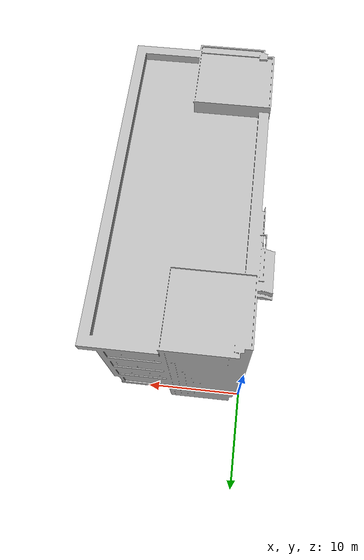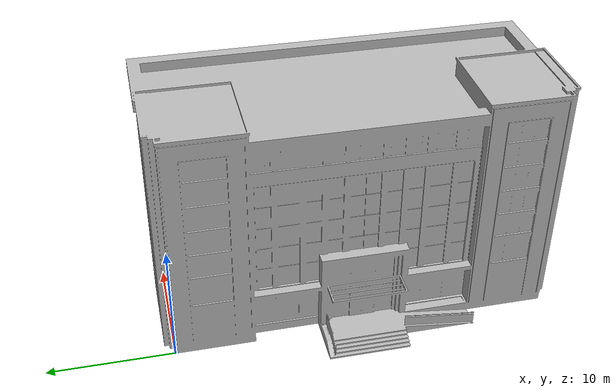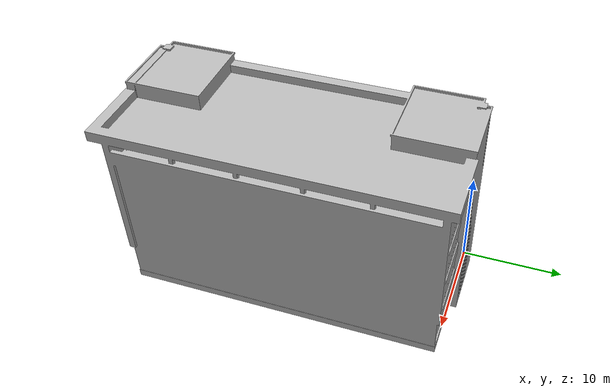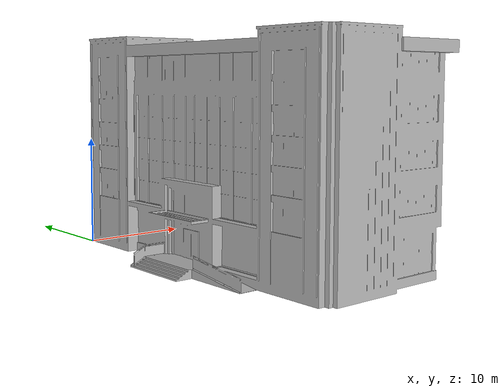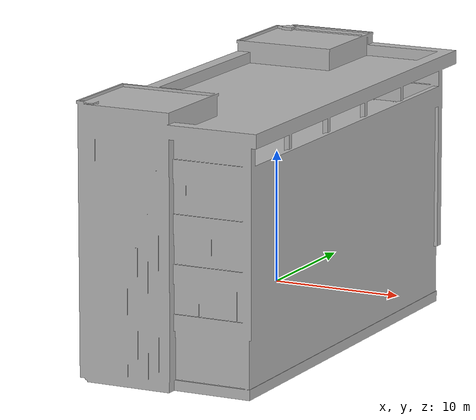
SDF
<?xml version='1.0'?>
<sdf version="1.6">
  <model name="Building">
    <static>true</static>
    <pose>0 0 0 0 0 0</pose>

    <link name="base_link">
      <inertial>
        <mass>1.0</mass>
        <inertia> <!-- inertias are tricky to compute -->
          <!-- http://gazebosim.org/tutorials?tut=inertia&cat=build_robot -->
          <ixx>0.083</ixx>       <!-- for a box: ixx = 0.083 * mass * (y*y + z*z) -->
          <ixy>0.0</ixy>         <!-- for a box: ixy = 0 -->
          <ixz>0.0</ixz>         <!-- for a box: ixz = 0 -->
          <iyy>0.083</iyy>       <!-- for a box: iyy = 0.083 * mass * (x*x + z*z) -->
          <iyz>0.0</iyz>         <!-- for a box: iyz = 0 -->
          <izz>0.083</izz>       <!-- for a box: izz = 0.083 * mass * (x*x + y*y) -->
        </inertia>
      </inertial>

      <visual name="base_visual">
          <geometry>
            <mesh>
              <uri>source/model.obj</uri>
            </mesh>
          </geometry>
      </visual>

      <collision name="base_collision">
        <geometry>
          <mesh>
              <uri>source/model.obj</uri>
          </mesh>
        </geometry>
      </collision>

    </link>

  </model>

</sdf>
